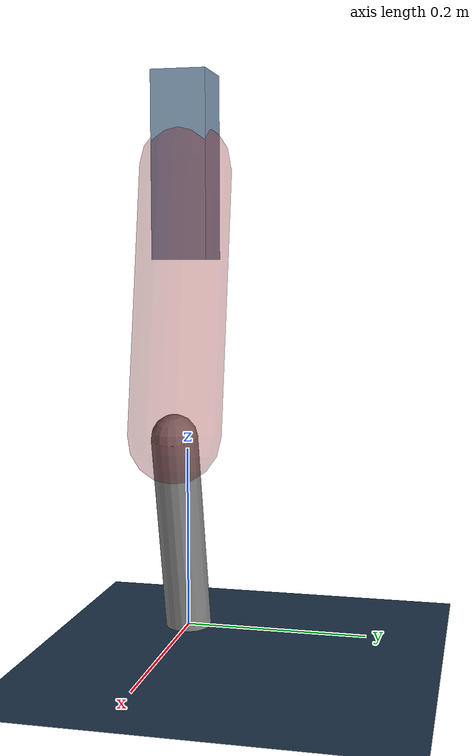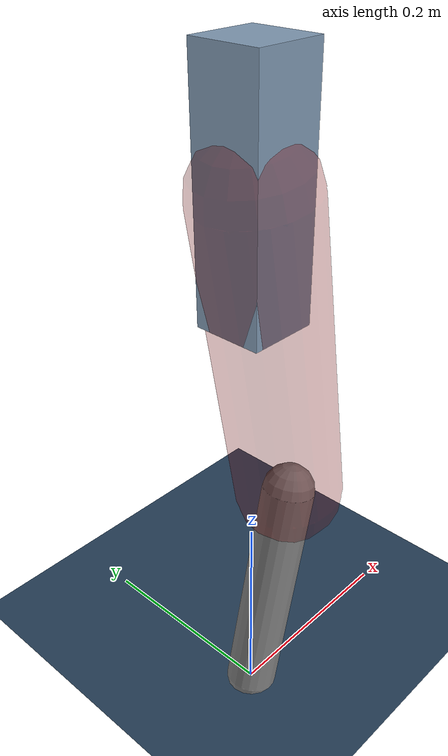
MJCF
<mujoco model="Hopper2D">
	<compiler inertiafromgeom="true" angle="radian" />
	<option timestep="0.001" integrator="implicit" cone="elliptic" solver="Newton" tolerance="1e-10" />

	<default>
		<geom contype="1" conaffinity="1" condim="3" friction="2 0.005 0.0001" solref="0.005 1" />
		<joint limited="true" damping="0.1" />
	</default>

	<asset>
		<texture name="skybox" type="skybox" builtin="gradient" rgb1=".4 .6 .8" rgb2="0 0 0" width="800" height="800" />
		<texture name="grid" type="2d" builtin="checker" rgb1=".1 .2 .3" rgb2=".2 .3 .4" width="300" height="300" mark="edge" markrgb=".2 .3 .4" />
		<material name="ground" texture="grid" texrepeat="1 1" texuniform="true" reflectance="0.1" />
		<material name="leg" rgba="0.5 0.6 0.7 1" />
	</asset>

	<worldbody>

		<geom name="floor" type="plane" size="5 5 0.25" material="ground" />

		<light directional="false" diffuse="0.8 0.8 0.8" specular="0.3 0.3 0.3" pos="0 0 2" dir="0 0 -1" />
		<light mode="targetbodycom" target="base" directional="false" diffuse="0.8 0.8 0.8" specular="0.3 0.3 0.3" pos="0 0 2" dir="0 0 -1" />

		<camera name="fixed" pos="0 -2 1" xyaxes="1 0 0 0 0 1" />
		<camera name="tracking" mode="trackcom" pos="0 -3 1" />

		<body name="root" pos="0 0 0.5092302747216234">
			<joint name="slide_x" type="slide" axis="1 0 0" range="-100 100" />
			<joint name="slide_z" type="slide" axis="0 0 1" range="0 10" />

			<body name="base" pos="0 0 0">
				<geom name="torso" type="box" size="0.03 0.03 0.1" mass="3.213" material="leg" />

				<body name="link1" pos="0 0 0" euler="0 1.3982774358946042 0">
					<joint type="hinge" axis="0 -1 0" pos="0 0 0" name="hinge1" limited="true" range="-3.14 3.14" stiffness="0" damping="0.1" />
					<geom name="thigh" type="capsule" fromto="0 0 0 0.29285394129010667 0 0" size="0.05" rgba="0.5 0 0 0.3" mass="0.969505641483288" />

					<body name="link2" pos="0.29285394129010667 0 0" euler="0 0.3964613006915884 0">
						<joint type="hinge" axis="0 -1 0" pos="0 0 0" name="hinge2" limited="true" range="-3.14 3.14" stiffness="0" damping="0.1" />
						<geom name="shank" type="capsule" fromto="0 0 0 0.22637633343151675 0 0" size="0.025" mass="0.4230010667452134" />

					</body>
				</body>
			</body>
		</body>
	</worldbody>

	<actuator>
		<motor name="torque1" joint="hinge1" ctrlrange="-82.61360664646614 82.61360664646614" ctrllimited="true" gear="1" />
		<motor name="torque2" joint="hinge2" ctrlrange="-170.52181277056764 170.52181277056764" ctrllimited="true" gear="1" />
	</actuator>
</mujoco>
